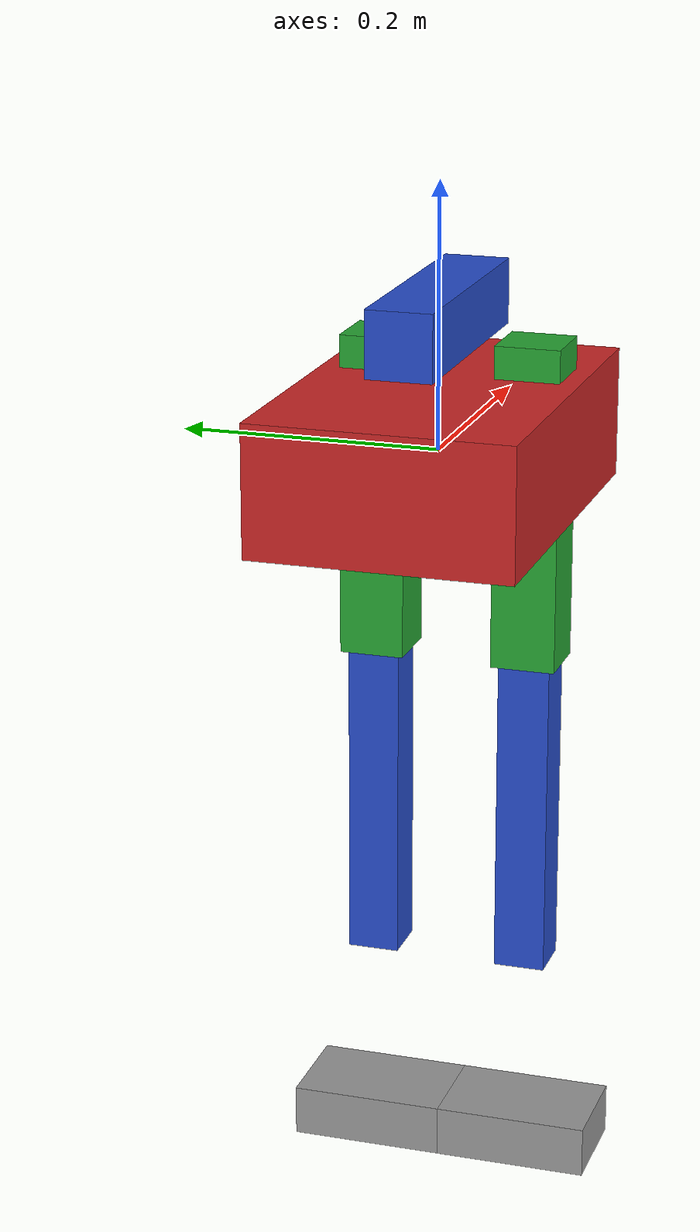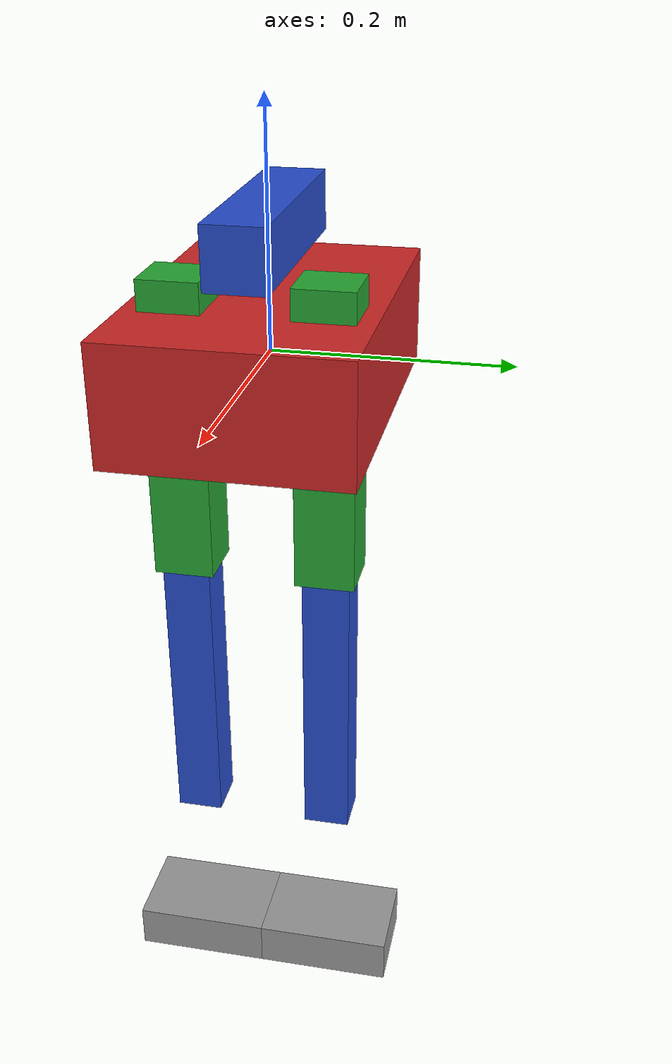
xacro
<?xml version="1.0"?>
<robot name="my_robot" xmlns:xacro="http://www.ros.org/wiki/xacro">

  <xacro:arg name="controllers_yaml" default="" />

  <!-- Parameters -->
  <xacro:property name="base_x" value="0.3"/>
  <xacro:property name="base_y" value="0.2"/>
  <xacro:property name="base_z" value="0.1"/>

  <!-- Inertia macro -->
  <xacro:macro name="box_inertia" params="mass x y z">
    <inertial>
      <origin xyz="0 0 0"/>
      <mass value="${mass}"/>
      <inertia
        ixx="${mass*(y*y+z*z)/12}"
        iyy="${mass*(x*x+z*z)/12}"
        izz="${mass*(x*x+y*y)/12}"
        ixy="0" ixz="0" iyz="0"/>
    </inertial>
  </xacro:macro>

  <!-- Base -->
  <link name="base_link">
    <xacro:box_inertia mass="5.0" x="${base_x}" y="${base_y}" z="${base_z}"/>

    <visual>
      <geometry>
        <box size="${base_x} ${base_y} ${base_z}"/>
      </geometry>
    </visual>

    <collision>
      <geometry>
        <box size="${base_x} ${base_y} ${base_z}"/>
      </geometry>
    </collision>
  </link>

  <gazebo reference="base_link">
    <material>Gazebo/Red</material>
  </gazebo>

  <!-- Support foot -->

  <!-- Upper body -->
  <link name="link_1">
    <xacro:box_inertia mass="1.0" x="0.2" y="0.05" z="0.05"/>

    <visual>
      <geometry>
        <box size="0.2 0.05 0.05"/>
      </geometry>
    </visual>

    <collision>
      <geometry>
        <box size="0.2 0.05 0.05"/>
      </geometry>
    </collision>
  </link>

  <gazebo reference="link_1">
    <material>Gazebo/Blue</material>
  </gazebo>

  <joint name="joint_1" type="revolute">
    <parent link="base_link"/>
    <child link="link_1"/>
    <origin xyz="0 0 0.1"/>
    <axis xyz="0 0 1"/>
    <limit lower="-1.57" upper="1.57" effort="10" velocity="3"/>
  </joint>

<!-- Leg macro -->
<xacro:macro name="biped_leg" params="prefix parent xyz">

  <!-- THIGH -->
  <link name="${prefix}_thigh">
    <xacro:box_inertia mass="1.5" x="0.05" y="0.05" z="0.25"/>
    <visual>
      <geometry><box size="0.05 0.05 0.25"/></geometry>
    </visual>
    <collision>
      <geometry><box size="0.05 0.05 0.25"/></geometry>
    </collision>
  </link>

  <gazebo reference="${prefix}_thigh">
    <material>Gazebo/Green</material>
  </gazebo>

  <joint name="${prefix}_hip_joint" type="revolute">
    <parent link="${parent}"/>
    <child link="${prefix}_thigh"/>
    <origin xyz="${xyz}" rpy="0 0 0"/>
    <axis xyz="1 0 0"/>
    <limit lower="-1.0" upper="1.0" effort="20" velocity="4"/>
    <dynamics damping="8.0" friction="3.0"/>
  </joint>

  <!-- SHIN -->
  <link name="${prefix}_shin">
    <xacro:box_inertia mass="1.0" x="0.04" y="0.04" z="0.25"/>
    <visual>
      <geometry><box size="0.04 0.04 0.25"/></geometry>
    </visual>
    <collision>
      <geometry><box size="0.04 0.04 0.25"/></geometry>
    </collision>
  </link>

  <gazebo reference="${prefix}_shin">
    <material>Gazebo/Blue</material>
  </gazebo>

  <joint name="${prefix}_knee_joint" type="revolute">
    <parent link="${prefix}_thigh"/>
    <child link="${prefix}_shin"/>
    <origin xyz="0 0 -0.25" rpy="0 0 0"/>
    <axis xyz="1 0 0"/>
    <limit lower="0.0" upper="2.2" effort="20" velocity="4"/>
    <dynamics damping="8.0" friction="3.0"/>
  </joint>

  <!-- FOOT -->
  <link name="${prefix}_foot">
    <xacro:box_inertia mass="0.8" x="0.08" y="0.12" z="0.04"/>

    <!-- Put the foot slightly below the ankle so it actually contacts the ground -->
    <visual>
      <origin xyz="0 0 -0.02" rpy="0 0 0"/>
      <geometry><box size="0.08 0.12 0.04"/></geometry>
    </visual>

    <collision>
      <origin xyz="0 0 -0.02" rpy="0 0 0"/>
      <geometry><box size="0.08 0.12 0.04"/></geometry>
    </collision>
  </link>

  <gazebo reference="${prefix}_foot">
    <material>Gazebo/Gray</material>
    <mu1>2.0</mu1>
    <mu2>2.0</mu2>
  </gazebo>

  <joint name="${prefix}_ankle_joint" type="revolute">
    <parent link="${prefix}_shin"/>
    <child link="${prefix}_foot"/>

    <!-- ankle at bottom of shin -->
    <origin xyz="0 0 -0.25" rpy="0 0 0"/>
    <axis xyz="1 0 0"/>
    <limit lower="-0.6" upper="0.6" effort="15" velocity="4"/>
    <dynamics damping="8.0" friction="3.0"/>
  </joint>

</xacro:macro>

<!-- Legs -->
<!-- Move legs inward and slightly forward so the robot doesn't tip instantly -->
<xacro:biped_leg prefix="left"  parent="base_link" xyz="0.05  0.06 -0.05"/>
<xacro:biped_leg prefix="right" parent="base_link" xyz="0.05 -0.06 -0.05"/>

  <!-- ROS 2 CONTROL -->
  <ros2_control name="my_biped" type="system">
    <hardware>
      <plugin>gazebo_ros2_control/GazeboSystem</plugin>
    </hardware>

    <joint name="left_hip">
      <command_interface name="position"/>
      <state_interface name="position"/>
      <state_interface name="velocity"/>
    </joint>

    <joint name="left_knee">
      <command_interface name="position"/>
      <state_interface name="position"/>
      <state_interface name="velocity"/>
    </joint>

    <joint name="left_ankle">
      <command_interface name="position"/>
      <state_interface name="position"/>
      <state_interface name="velocity"/>
    </joint>

    <joint name="right_hip">
      <command_interface name="position"/>
      <state_interface name="position"/>
      <state_interface name="velocity"/>
    </joint>

    <joint name="right_knee">
      <command_interface name="position"/>
      <state_interface name="position"/>
      <state_interface name="velocity"/>
    </joint>

    <joint name="right_ankle">
      <command_interface name="position"/>
      <state_interface name="position"/>
      <state_interface name="velocity"/>
    </joint>
  </ros2_control>

  <!-- Gazebo Classic plugin -->
  <gazebo>
  <plugin name="gazebo_ros2_control" filename="libgazebo_ros2_control.so">
    <robot_param>robot_description</robot_param>
    <parameters>$(find my_robot_description)/config/controllers.yaml</parameters>
  </plugin>
</gazebo>

</robot>
